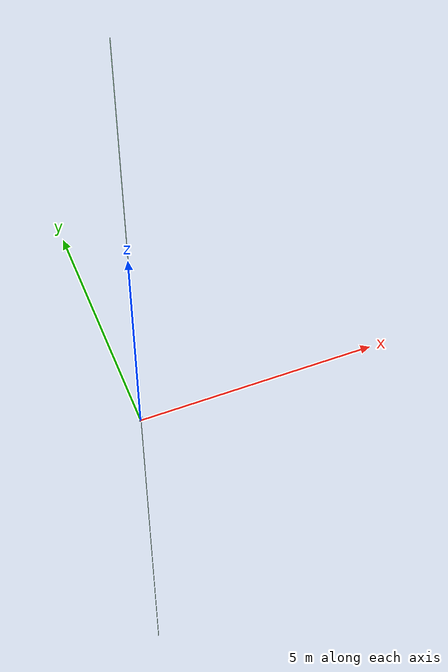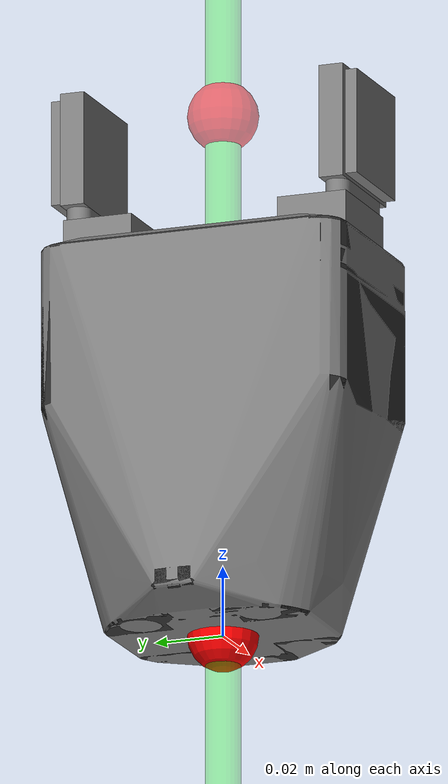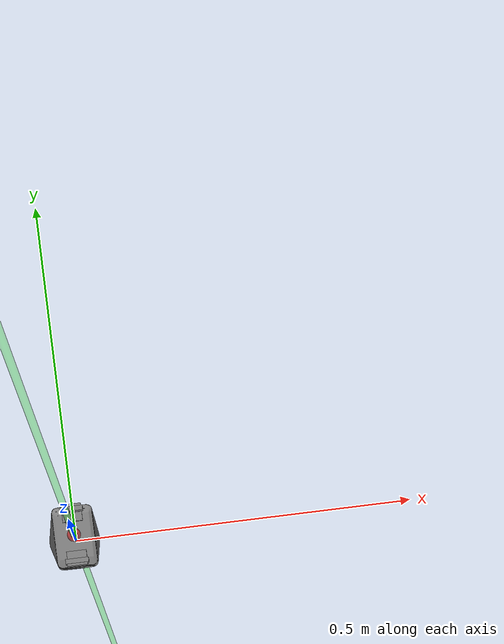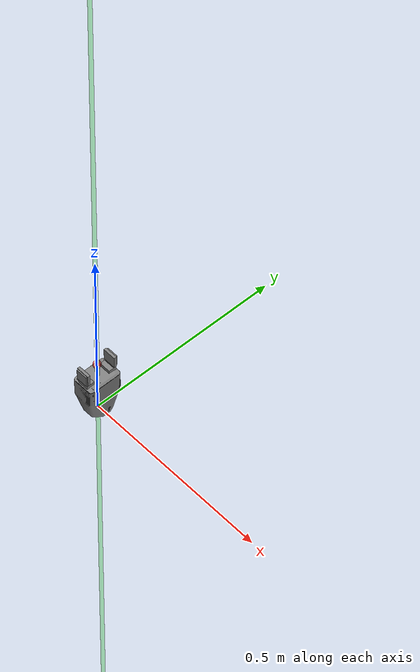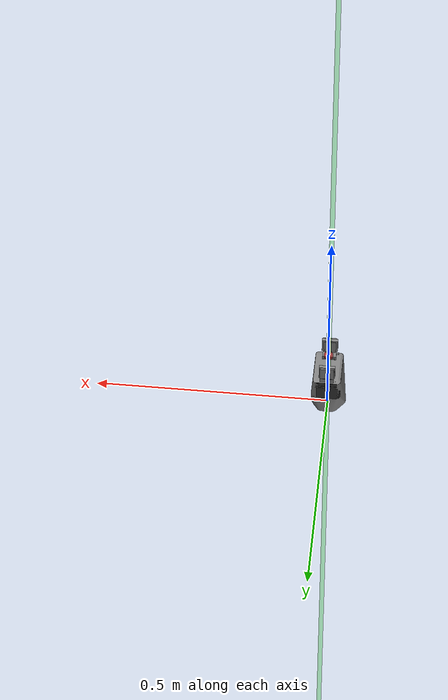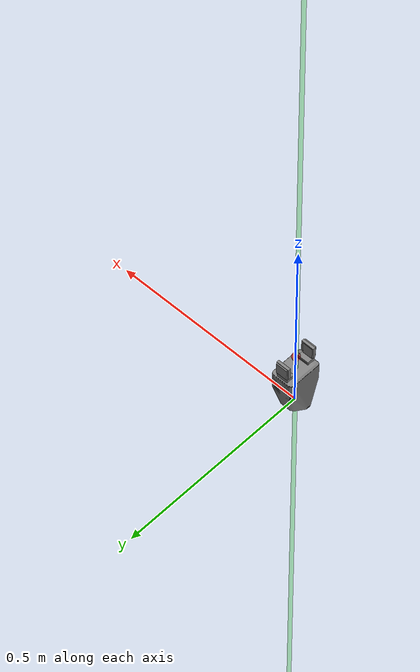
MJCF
<mujoco model="twofg7_hand">
    <asset>
        <mesh name="base_vis" file="meshes/twofg7/base_vis.stl" />
        <mesh name="base_col" file="meshes/twofg7/base.stl" />
        <mesh name="left_finger_vis" file="meshes/twofg7/left_finger_vis.stl" />
        <mesh name="left_finger_col" file="meshes/twofg7/left_finger.stl" />
        <mesh name="right_finger_vis" file="meshes/twofg7/right_finger_vis.stl" />
        <mesh name="right_finger_col" file="meshes/twofg7/right_finger.stl" />
    </asset>
    <actuator>
        <position ctrllimited="true" ctrlrange="-0.019 0.0" joint="finger_joint1" kp="1000" name="gripper_finger_joint1" forcelimited="true" forcerange="-70 70"/>
        <position ctrllimited="true" ctrlrange="0.0 0.019" joint="finger_joint2" kp="1000" name="gripper_finger_joint2" forcelimited="true" forcerange="-70 70"/>
    </actuator>
    <worldbody>
        <body name="right_gripper" pos="0 0 0" quat="0.707107 0 0 -0.707107">
            <site name="ft_frame" pos="0 0 0" size="0.01 0.01 0.01" rgba="1 0 0 1" type="sphere" group="1"/>
            <inertial pos="0 0 0.056" quat="1 0 0 0" mass="0.9" diaginertia="0.001402 0.001542 0.001076" />
            <geom pos="0 0 0" quat="1 0 0 0" type="mesh" contype="0" conaffinity="0" group="1" mesh="base_vis" name="hand_visual" rgba="0.2 0.2 0.2 1" />
            <geom pos="0 0 0" quat="1 0 0 0" type="mesh" mesh="base_col" group="0" contype="0" conaffinity="1" name="hand_collision"/>
            <body name="eef" pos="0 0 0.150" quat="1 0 0 0">
                <site name="grip_site" pos="0 0 0" size="0.01 0.01 0.01" rgba="1 0 0 0.5" type="sphere" group="1"/>
                <site name="ee_x" pos="0.1 0 0" size="0.005 .1" quat="0.707105 0 0.707108 0 " rgba="1 0 0 0" type="cylinder" group="1"/>
                <site name="ee_y" pos="0 0.1 0" size="0.005 .1" quat="0.707105 0.707108 0 0" rgba="0 1 0 0" type="cylinder" group="1"/>
                <site name="ee_z" pos="0 0 0.1" size="0.005 .1" quat="1 0 0 0" rgba="0 0 1 0" type="cylinder" group="1"/>
                <site name="grip_site_cylinder" pos="0 0 0" size="0.005 10" rgba="0 1 0 0.3" type="cylinder" group="1"/>
            </body>
            <body name="leftfinger" pos="-0.009 0 0">
                <inertial pos="-0.023 0 0.131" mass="0.1" diaginertia="0.0000306 0.0000243 0.0000130" />
                <joint name="finger_joint1" pos="0 0 0" axis="-1 0 0" type="slide" limited="true" range="-0.019 0.0" damping="100" armature="1.0" frictionloss="1.0"/>
                <geom type="mesh" contype="0" conaffinity="0" group="1" mesh="left_finger_vis" name="finger1_visual" rgba="0.499 0.499 0.499 1" />
                <geom type="box" size="0.0101 0.0147 0.0070" pos="-0.0228 0 0.1134" group="0" conaffinity="1" contype="0" solref="0.02 1" friction="1 0.005 0.0001" condim="4" name="finger1_collision_bracket"/>
                <geom type="box" size="0.0035 0.0170 0.0162" pos="-0.0294 0 0.1402" group="0" conaffinity="1" contype="0" solref="0.02 1" friction="1 0.005 0.0001" condim="4" name="finger1_collision_blade"/>
                <body name="finger_joint1_tip" pos="-0.0294 0 0.14">
                    <inertial pos="0 0 0" quat="0 0 0 1" mass="0.01" diaginertia="0.01 0.01 0.01" />
                    <geom size="0.004 0.015 0.015" pos="-0.003 0 0" quat="0 0 0 1" type="box" group="0" solref="0.02 1" friction="2 0.005 0.0001" conaffinity="1" contype="1" name="finger1_pad_collision"/>
                </body>
            </body>
            <!-- pos.x=0.007: mirrors leftfinger's outward offset, see its comment. -->
            <body name="rightfinger" pos="0.009 0 0">
                <inertial pos="0.023 0 0.131" mass="0.1" diaginertia="0.0000306 0.0000243 0.0000130" />
                <joint name="finger_joint2" pos="0 0 0" axis="-1 0 0" type="slide" limited="true" range="0.0 0.019" damping="100" armature="1.0" frictionloss="1.0"/>
                <geom type="mesh" contype="0" conaffinity="0" group="1" mesh="right_finger_vis" name="finger2_visual" rgba="0.499 0.499 0.499 1" />
                <!-- Two boxes, mirror finger1_collision_bracket/_blade, see their comment. -->
                <geom type="box" size="0.0101 0.0147 0.0070" pos="0.0228 0 0.1134" group="0" conaffinity="1" contype="0" solref="0.02 1" friction="1 0.005 0.0001" condim="4" name="finger2_collision_bracket"/>
                <geom type="box" size="0.0035 0.0170 0.0162" pos="0.0294 0 0.1402" group="0" conaffinity="1" contype="0" solref="0.02 1" friction="1 0.005 0.0001" condim="4" name="finger2_collision_blade"/>
                <!-- mirrors finger_joint1_tip's fix: x=0.0294 matches right_finger_col's own tip
                centroid (mirror-symmetric with the left finger, x=+29.4mm), not the old 0.0127. -->
                <body name="finger_joint2_tip" pos="0.0294 0 0.14">
                    <inertial pos="0 0 0" quat="0 0 0 1" mass="0.01" diaginertia="0.01 0.01 0.01" />
                    <geom size="0.004 0.015 0.015" pos="0.003 0 0" quat="0 0 0 1" type="box" group="0" solref="0.02 1" friction="2 0.005 0.0001" conaffinity="1" contype="1" name="finger2_pad_collision"/>
                </body>
            </body>
        </body>
    </worldbody>
    <sensor>
        <force name="force_ee" site="ft_frame"/>
        <torque name="torque_ee" site="ft_frame"/>
    </sensor>
</mujoco>
